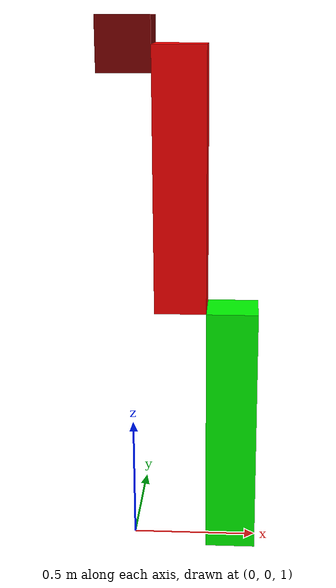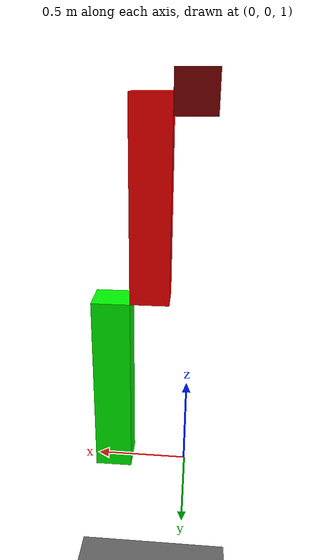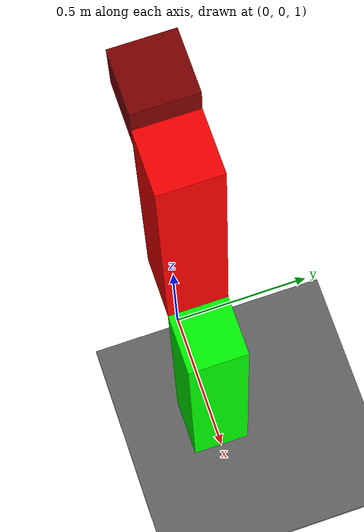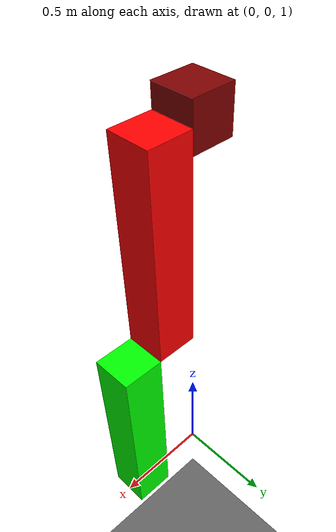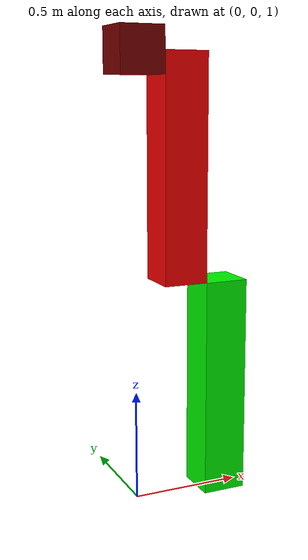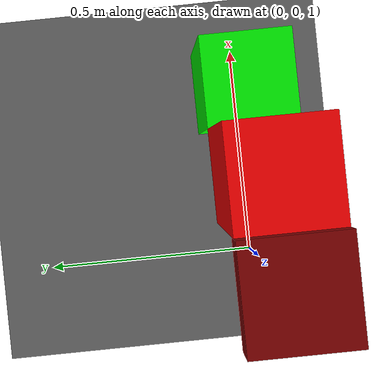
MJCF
<!-- TODO -->
<!-- (1) correct mass/inertial matricies (just weight for now) -->
<mujoco model="mushr_nano">
  <compiler angle="radian" />
  <size njmax="500" nconmax="100"/>
  <option timestep="0.002" integrator="Euler"/>
  <option>
      <flag multiccd="enable"/>
  </option>
  <include file="../friction_floors/friction_floor_uniform.xml"/>
  <visual>
    <headlight ambient="0.6 0.6 0.6" diffuse="0.5 0.5 0.5" specular="0.2 0.2 0.2"/>
    <map znear="0.001" />
  </visual>
  <worldbody>
    <body name="fix_box" pos="0.0 0.0 3" euler="0 0 0.0">
        <geom  type="box"  name="fix_box" contype="1" conaffinity="1"  condim="6"
               size="0.1 0.1 0.1"  pos="0 0 0" euler="0 0 0"  rgba="0.5 0 0 1.0"/>
        <body name="link0" pos="0.2 0.0 -0.5">
            <joint name="joint0" type="hinge" axis="1 0 0" limited="false" pos="0.0 0.0 0.5"
                   frictionloss="0.01" damping="0.1" armature="0.0002"  />
            <geom name="link0" type="box" contype="1" conaffinity="1" mass="0.5"
                  size="0.1 0.1 0.5"  rgba="1 0 0 1.0"/>
            <body name="link1" pos="0.2 0.0 -1.0">
              <joint name="joint1" type="hinge" axis="1 0 0" limited="false" pos="0.0 0.0 0.5"
                   frictionloss="0.01" damping="0.1" armature="0.0002"  />
              <geom name="link1" type="box" contype="1" conaffinity="1" mass="0.5"
                  size="0.1 0.1 0.5"  rgba="0 1 0 1.0"/>
            </body>
        </body>
    </body>
  </worldbody>
    <actuator>
    <motor gear="1" forcelimited="true" forcerange="-100 100" name="joint1_motor" joint="joint1"/>
  </actuator>
</mujoco>

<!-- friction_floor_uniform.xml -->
<mujoco model="friction_floor_uniform">
  <compiler angle="radian" />
  <asset>
    <texture name='a' builtin="gradient" height="100" rgb1="1 1 1" rgb2="0 0 0" type="skybox" width="100"/>
    <texture name="texplane0" type="2d" builtin="checker" rgb1="0 0 0" rgb2="0.8 0.8 0.8" width="100" height="100" mark="cross" markrgb=".8 .8 .8"/>
    <material name="matplane0" reflectance="0.3" texture="texplane0" texrepeat="1 1" texuniform="true"/>
  </asset>
  <visual>
    <headlight ambient="0.6 0.6 0.6" diffuse="0.5 0.5 0.5" specular="0.2 0.2 0.2"/>
    <map znear="0.001" />
  </visual>
  <worldbody>
    <geom contype="1" friction="1 0 0.01" name="floor0" pos="0 0 0" euler="0 0 0" size="100 100 0.01" type="box" material="matplane0" condim="6"/>

  </worldbody>
</mujoco>
